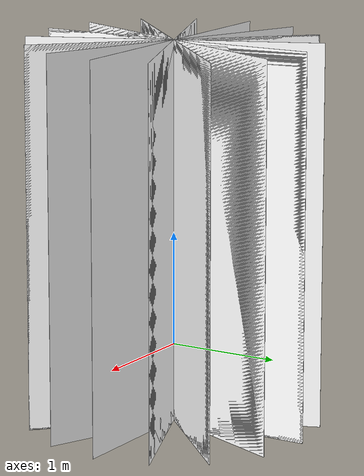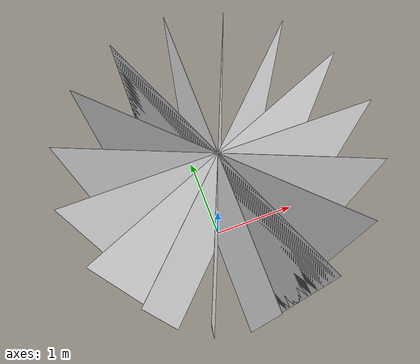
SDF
<?xml version="1.0"?>
<sdf version="1.9">
  <model name="real_fire">
    <static>true</static>

    <link name="fire_link">

         <visual name="fire_plane_1_front">
        <pose>0 0 1.0 0 0 0</pose>
        <geometry><plane><normal>0 1 0</normal><size>2.6 3.4</size></plane></geometry>
        <material><diffuse>1 1 1 1</diffuse><ambient>1 1 1 1</ambient><emissive>1 0.45 0.05 1</emissive><pbr><metal><albedo_map>file:///home/user/fire_drone_ws/models/real_fire/materials/textures/fire.png</albedo_map></metal></pbr></material>
      </visual>

      <visual name="fire_plane_1_back">
        <pose>0 0 1.0 0 0 0</pose>
        <geometry><plane><normal>0 -1 0</normal><size>2.6 3.4</size></plane></geometry>
        <material><diffuse>1 1 1 1</diffuse><ambient>1 1 1 1</ambient><emissive>1 0.45 0.05 1</emissive><pbr><metal><albedo_map>file:///home/user/fire_drone_ws/models/real_fire/materials/textures/fire.png</albedo_map></metal></pbr></material>
      </visual>

      <!-- 22.5 deg -->
      <visual name="fire_plane_2_front">
        <pose>0 0 1.0 0 0 0.392699</pose>
        <geometry><plane><normal>0 1 0</normal><size>2.6 3.4</size></plane></geometry>
        <material><diffuse>1 1 1 1</diffuse><ambient>1 1 1 1</ambient><emissive>1 0.45 0.05 1</emissive><pbr><metal><albedo_map>file:///home/user/fire_drone_ws/models/real_fire/materials/textures/fire.png</albedo_map></metal></pbr></material>
      </visual>

      <visual name="fire_plane_2_back">
        <pose>0 0 1.0 0 0 0.392699</pose>
        <geometry><plane><normal>0 -1 0</normal><size>2.6 3.4</size></plane></geometry>
        <material><diffuse>1 1 1 1</diffuse><ambient>1 1 1 1</ambient><emissive>1 0.45 0.05 1</emissive><pbr><metal><albedo_map>file:///home/user/fire_drone_ws/models/real_fire/materials/textures/fire.png</albedo_map></metal></pbr></material>
      </visual>

      <!-- 45 deg -->
      <visual name="fire_plane_3_front">
        <pose>0 0 1.0 0 0 0.785398</pose>
        <geometry><plane><normal>0 1 0</normal><size>2.6 3.4</size></plane></geometry>
        <material><diffuse>1 1 1 1</diffuse><ambient>1 1 1 1</ambient><emissive>1 0.45 0.05 1</emissive><pbr><metal><albedo_map>file:///home/user/fire_drone_ws/models/real_fire/materials/textures/fire.png</albedo_map></metal></pbr></material>
      </visual>

      <visual name="fire_plane_3_back">
        <pose>0 0 1.0 0 0 0.785398</pose>
        <geometry><plane><normal>0 -1 0</normal><size>2.6 3.4</size></plane></geometry>
        <material><diffuse>1 1 1 1</diffuse><ambient>1 1 1 1</ambient><emissive>1 0.45 0.05 1</emissive><pbr><metal><albedo_map>file:///home/user/fire_drone_ws/models/real_fire/materials/textures/fire.png</albedo_map></metal></pbr></material>
      </visual>

      <!-- 67.5 deg -->
      <visual name="fire_plane_4_front">
        <pose>0 0 1.0 0 0 1.178097</pose>
        <geometry><plane><normal>0 1 0</normal><size>2.6 3.4</size></plane></geometry>
        <material><diffuse>1 1 1 1</diffuse><ambient>1 1 1 1</ambient><emissive>1 0.45 0.05 1</emissive><pbr><metal><albedo_map>file:///home/user/fire_drone_ws/models/real_fire/materials/textures/fire.png</albedo_map></metal></pbr></material>
      </visual>

      <visual name="fire_plane_4_back">
        <pose>0 0 1.0 0 0 1.178097</pose>
        <geometry><plane><normal>0 -1 0</normal><size>2.6 3.4</size></plane></geometry>
        <material><diffuse>1 1 1 1</diffuse><ambient>1 1 1 1</ambient><emissive>1 0.45 0.05 1</emissive><pbr><metal><albedo_map>file:///home/user/fire_drone_ws/models/real_fire/materials/textures/fire.png</albedo_map></metal></pbr></material>
      </visual>

      <!-- 90 deg -->
      <visual name="fire_plane_5_front">
        <pose>0 0 1.0 0 0 1.570796</pose>
        <geometry><plane><normal>0 1 0</normal><size>2.6 3.4</size></plane></geometry>
        <material><diffuse>1 1 1 1</diffuse><ambient>1 1 1 1</ambient><emissive>1 0.45 0.05 1</emissive><pbr><metal><albedo_map>file:///home/user/fire_drone_ws/models/real_fire/materials/textures/fire.png</albedo_map></metal></pbr></material>
      </visual>

      <visual name="fire_plane_5_back">
        <pose>0 0 1.0 0 0 1.570796</pose>
        <geometry><plane><normal>0 -1 0</normal><size>2.6 3.4</size></plane></geometry>
        <material><diffuse>1 1 1 1</diffuse><ambient>1 1 1 1</ambient><emissive>1 0.45 0.05 1</emissive><pbr><metal><albedo_map>file:///home/user/fire_drone_ws/models/real_fire/materials/textures/fire.png</albedo_map></metal></pbr></material>
      </visual>

      <!-- 112.5 deg -->
      <visual name="fire_plane_6_front">
        <pose>0 0 1.0 0 0 1.963495</pose>
        <geometry><plane><normal>0 1 0</normal><size>2.6 3.4</size></plane></geometry>
        <material><diffuse>1 1 1 1</diffuse><ambient>1 1 1 1</ambient><emissive>1 0.45 0.05 1</emissive><pbr><metal><albedo_map>file:///home/user/fire_drone_ws/models/real_fire/materials/textures/fire.png</albedo_map></metal></pbr></material>
      </visual>

      <visual name="fire_plane_6_back">
        <pose>0 0 1.0 0 0 1.963495</pose>
        <geometry><plane><normal>0 -1 0</normal><size>2.6 3.4</size></plane></geometry>
        <material><diffuse>1 1 1 1</diffuse><ambient>1 1 1 1</ambient><emissive>1 0.45 0.05 1</emissive><pbr><metal><albedo_map>file:///home/user/fire_drone_ws/models/real_fire/materials/textures/fire.png</albedo_map></metal></pbr></material>
      </visual>

      <!-- 135 deg -->
      <visual name="fire_plane_7_front">
        <pose>0 0 1.0 0 0 2.356194</pose>
        <geometry><plane><normal>0 1 0</normal><size>2.6 3.4</size></plane></geometry>
        <material><diffuse>1 1 1 1</diffuse><ambient>1 1 1 1</ambient><emissive>1 0.45 0.05 1</emissive><pbr><metal><albedo_map>file:///home/user/fire_drone_ws/models/real_fire/materials/textures/fire.png</albedo_map></metal></pbr></material>
      </visual>

      <visual name="fire_plane_7_back">
        <pose>0 0 1.0 0 0 2.356194</pose>
        <geometry><plane><normal>0 -1 0</normal><size>2.6 3.4</size></plane></geometry>
        <material><diffuse>1 1 1 1</diffuse><ambient>1 1 1 1</ambient><emissive>1 0.45 0.05 1</emissive><pbr><metal><albedo_map>file:///home/user/fire_drone_ws/models/real_fire/materials/textures/fire.png</albedo_map></metal></pbr></material>
      </visual>

      <!-- 157.5 deg -->
      <visual name="fire_plane_8_front">
        <pose>0 0 1.0 0 0 2.748894</pose>
        <geometry><plane><normal>0 1 0</normal><size>2.6 3.4</size></plane></geometry>
        <material><diffuse>1 1 1 1</diffuse><ambient>1 1 1 1</ambient><emissive>1 0.45 0.05 1</emissive><pbr><metal><albedo_map>file:///home/user/fire_drone_ws/models/real_fire/materials/textures/fire.png</albedo_map></metal></pbr></material>
      </visual>

      <visual name="fire_plane_8_back">
        <pose>0 0 1.0 0 0 2.748894</pose>
        <geometry><plane><normal>0 -1 0</normal><size>2.6 3.4</size></plane></geometry>
        <material><diffuse>1 1 1 1</diffuse><ambient>1 1 1 1</ambient><emissive>1 0.45 0.05 1</emissive><pbr><metal><albedo_map>file:///home/user/fire_drone_ws/models/real_fire/materials/textures/fire.png</albedo_map></metal></pbr></material>
      </visual>
    </link>
  </model>
</sdf>
